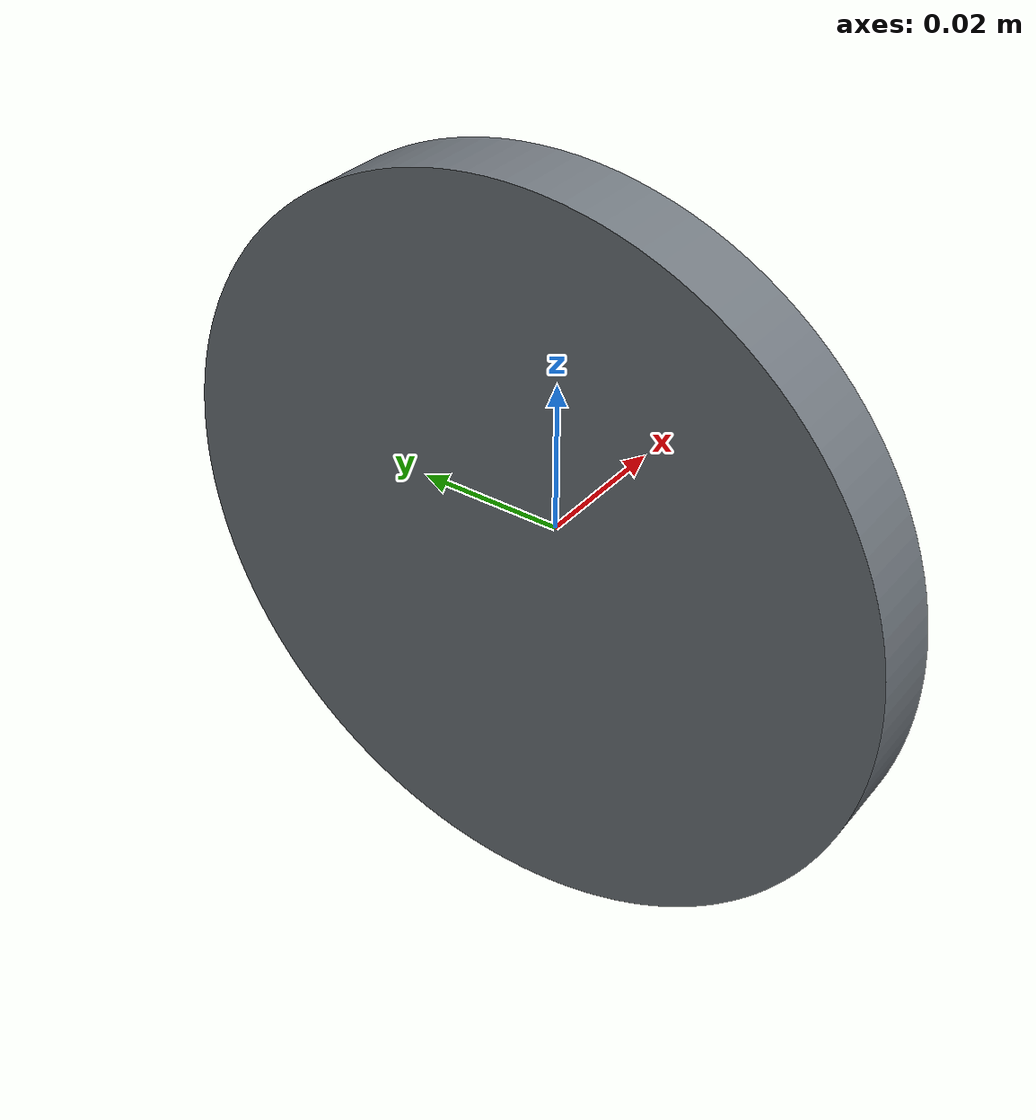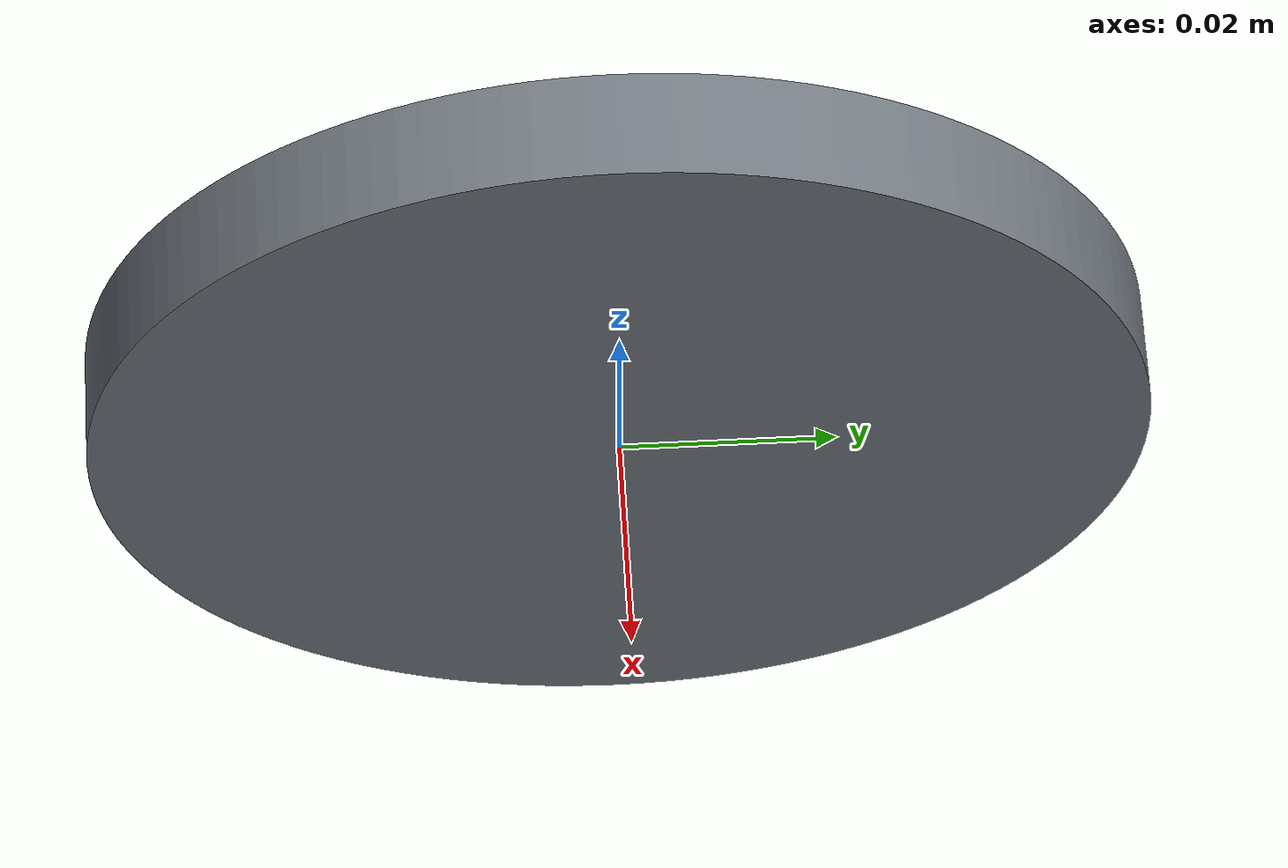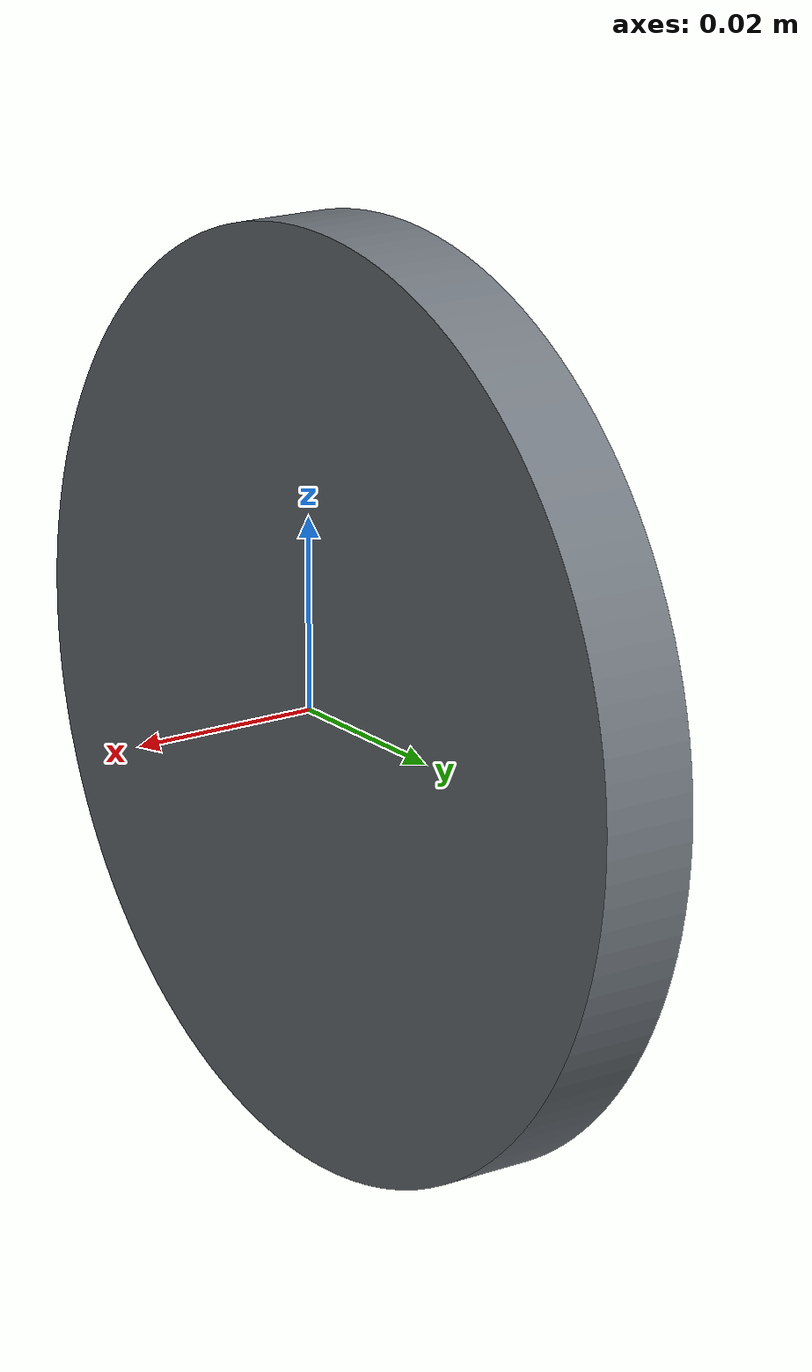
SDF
<?xml version="1.0"?>
<sdf version="1.8">
    <model name="R2_wheel">
        <link name = "wheel">
            <inertial>
                <mass>1.0</mass>
                <inertia>
                    <ixx>0.005</ixx> <ixy>0</ixy> <ixz>0</ixz>
                    <iyy>0.005</iyy> <iyz>0</iyz>
                    <izz>0.005</izz>
                </inertia>
            </inertial>
            <visual name="visual">
            <pose>0 0 0 0 3.1415926535 0</pose>
                <geometry><mesh><uri>model://R2_wheel/meshes/wheel.dae</uri></mesh></geometry>
            </visual>
            <collision name="collision">
            <pose>0 0 0 0 3.1415926535 0</pose>
                <geometry><mesh><uri>model://R2_wheel/meshes/wheel.dae</uri></mesh></geometry>
                <surface>
                <friction>
                    <ode>
                    <mu>1.0</mu>  <mu2>1.0</mu2>
                    </ode>
                </friction>
                </surface>
            </collision>
        </link>

    </model>
</sdf>
